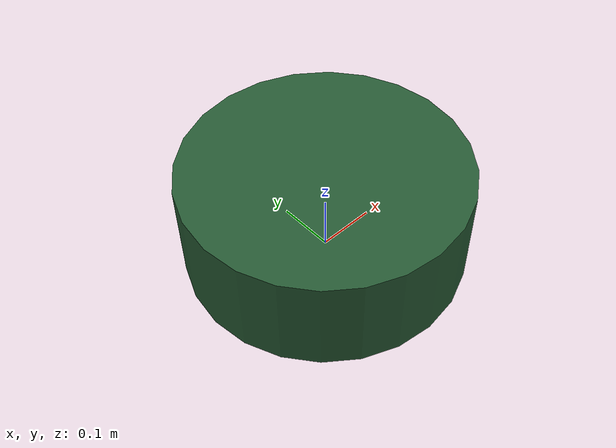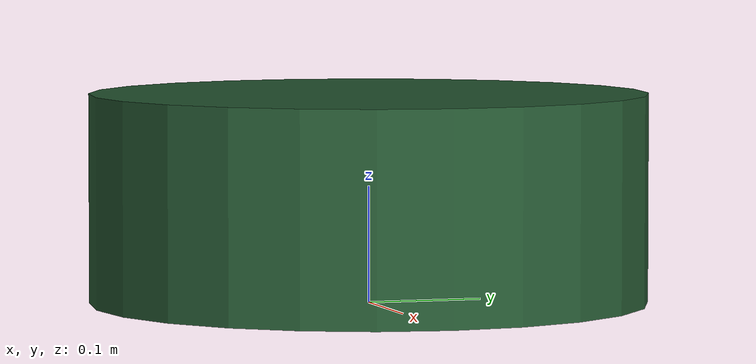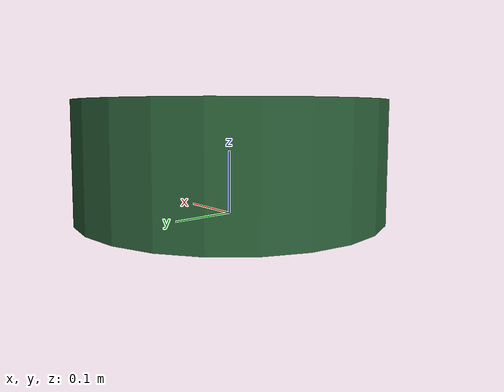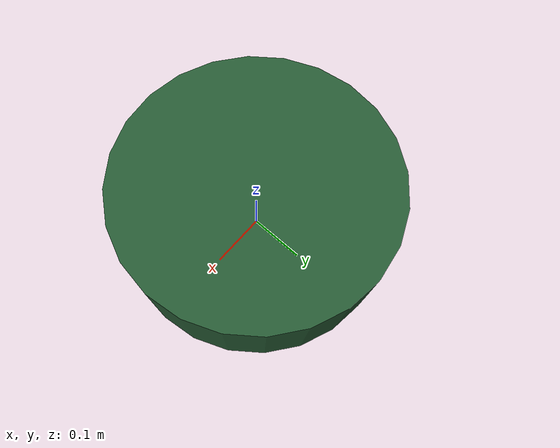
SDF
<?xml version="1.0"?>
<!-- Coiled watering hose: low, wide, and invisible to a map made last week. -->
<sdf version="1.7">
  <model name="hose_coil">
    <static>true</static>
    <link name="link">
      <visual name="body">
        <pose>0 0 0.09 0 0 0</pose>
        <geometry><cylinder><radius>0.24</radius><length>0.18</length></cylinder></geometry>
        <material><ambient>0.1 0.25 0.15 1</ambient><diffuse>0.15 0.35 0.2 1</diffuse></material>
      </visual>
      <collision name="collision">
        <pose>0 0 0.09 0 0 0</pose>
        <geometry><cylinder><radius>0.24</radius><length>0.18</length></cylinder></geometry>
      </collision>
    </link>
  </model>
</sdf>
